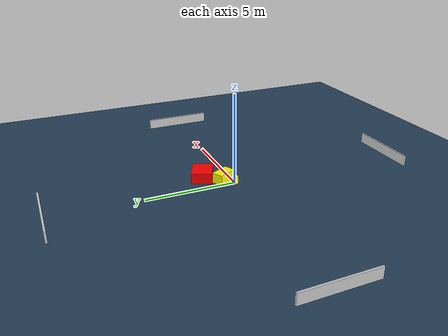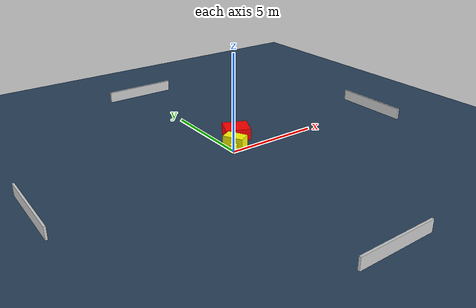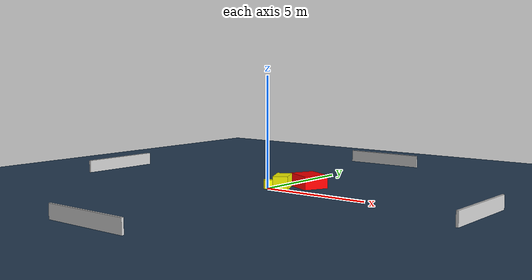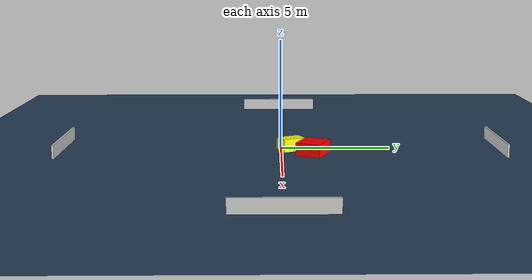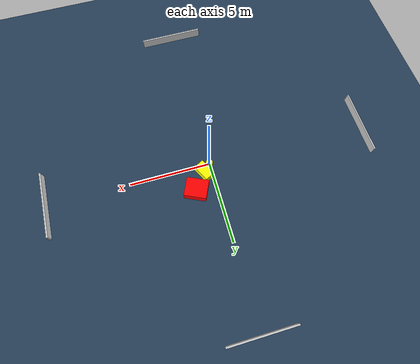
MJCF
<?xml version="1.0" ?>
<mujoco model="generated_environment">
  <option timestep="0.01" integrator="RK4" cone="elliptic"/>
  <default>
    <geom density="1"/>
  </default>
  <asset>
    <texture builtin="gradient" height="3072" name="skybox" rgb1="0.3 0.5 0.7" rgb2="0 0 0" type="skybox" width="512"/>
    <texture builtin="checker" height="300" name="groundplane" rgb1="0.2 0.3 0.4" rgb2="0.1 0.2 0.3" type="2d" width="300"/>
    <material name="groundplane" reflectance="0.2" texrepeat="5 5" texture="groundplane"/>
  </asset>
  <worldbody>
    <light dir="0 0 -1" directional="true" pos="0 0 1.5"/>
    <geom condim="3" friction="0.5 0.005 0.001" material="groundplane" name="floor" pos="0 0 0" size="0 0 0.05" type="plane"/>
    <body name="walls">
      <geom name="wall_1" condim="4" pos="-10.0 0.0 0.3" rgba="0.800000011920929 0.800000011920929 0.800000011920929 1.0" size="0.05 2.0 0.3" type="box"/>
      <geom name="wall_2" condim="4" pos="10.0 0.0 0.3" rgba="0.800000011920929 0.800000011920929 0.800000011920929 1.0" size="0.05 2.0 0.3" type="box"/>
      <geom name="wall_3" condim="4" pos="0.0 -10.0 0.3" rgba="0.800000011920929 0.800000011920929 0.800000011920929 1.0" size="2.0 0.05 0.3" type="box"/>
      <geom name="wall_4" condim="4" pos="0.0 10.0 0.3" rgba="0.800000011920929 0.800000011920929 0.800000011920929 1.0" size="2.0 0.05 0.3" type="box"/>
    </body>
    <body name="robot">
      <joint name="joint_x" type="slide" pos="0 0 0" axis="1 0 0"/>
      <joint name="joint_y" type="slide" pos="0 0 0" axis="0 1 0"/>
      <geom name="robot" type="cylinder" pos="0.0 0.0 0.2" size="0.2 0.2 0.0" mass="5.0" friction="1.0 0.005 0.0001" condim="4" rgba="1.0 1.0 0.0 1.0"/>
    </body>
    <body name="obstacle_1_movable">
      <geom name="obstacle_1_movable" condim="4" pos="0.4436518113801498 0.4767267128048428 0.3" euler="0 0 117.17020070355603" friction="0.0 0.005 0.001" rgba="1.0 1.0 0.0 1.0" size="0.5344581982777035 0.33132593515399933 0.3" type="box" mass="0.1"/>
      <joint type="free"/>
    </body>
    <body name="obstacle_2_static">
      <geom name="obstacle_2_static" condim="4" pos="1.2057878404583016 1.4343733350658263 0.3" euler="0 0 65.19812418158553" friction="0.0 0.005 0.001" rgba="1.0 0.0 0.0 1.0" size="0.571287993561161 0.6678220692111047 0.3" type="box"/>
    </body>
  </worldbody>
  <actuator>
    <motor name="actuator_x" joint="joint_x" gear="1" ctrlrange="-1 1"/>
    <motor name="actuator_y" joint="joint_y" gear="1" ctrlrange="-1 1"/>
  </actuator>
</mujoco>
